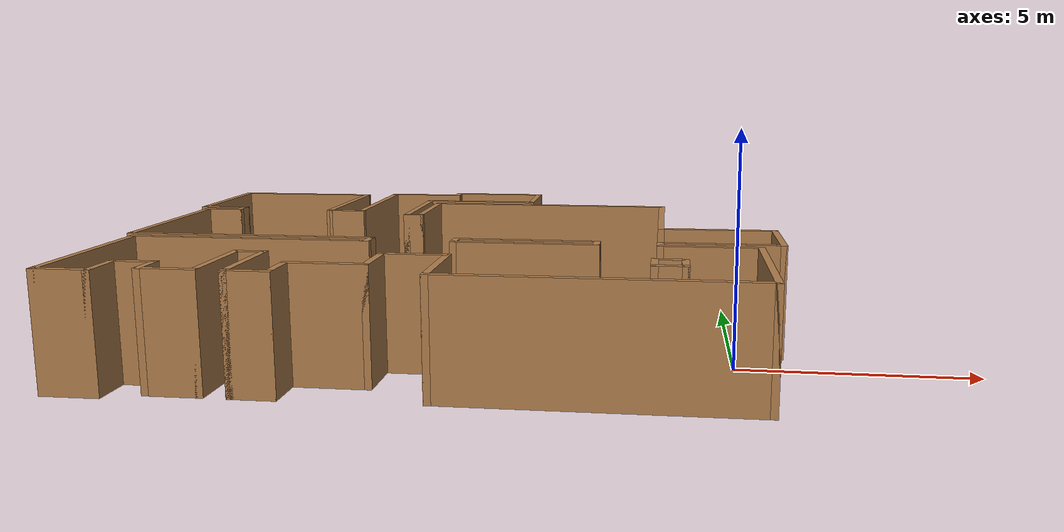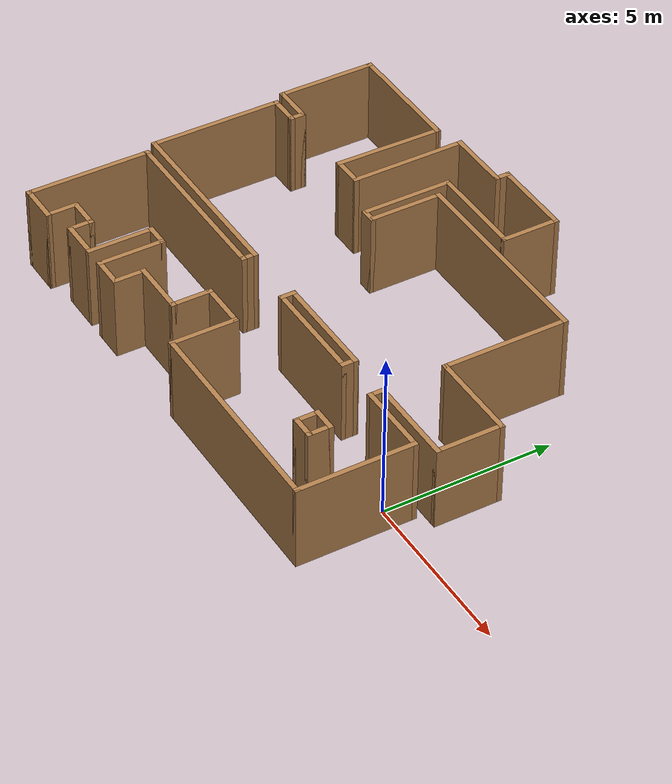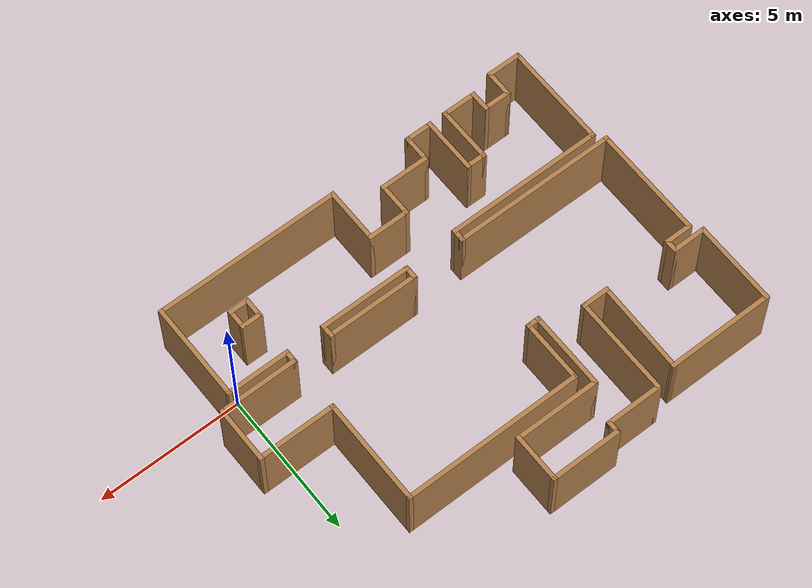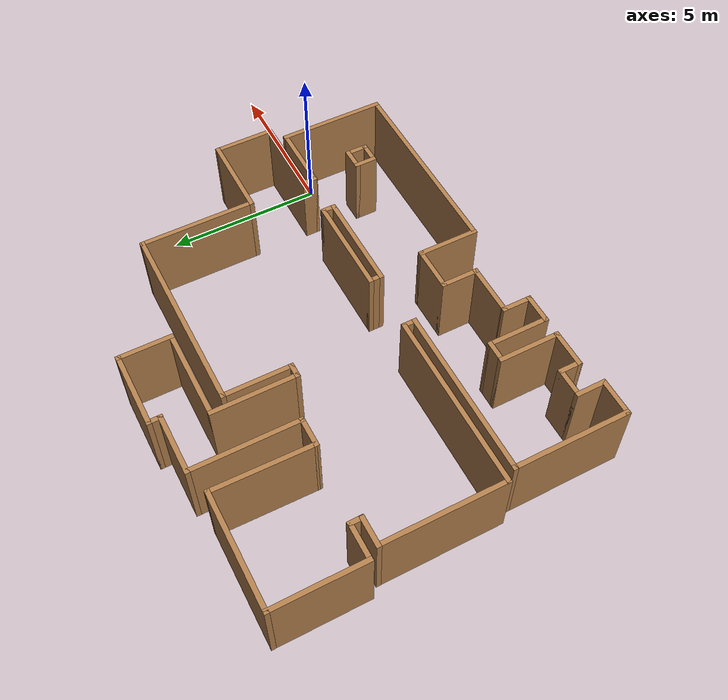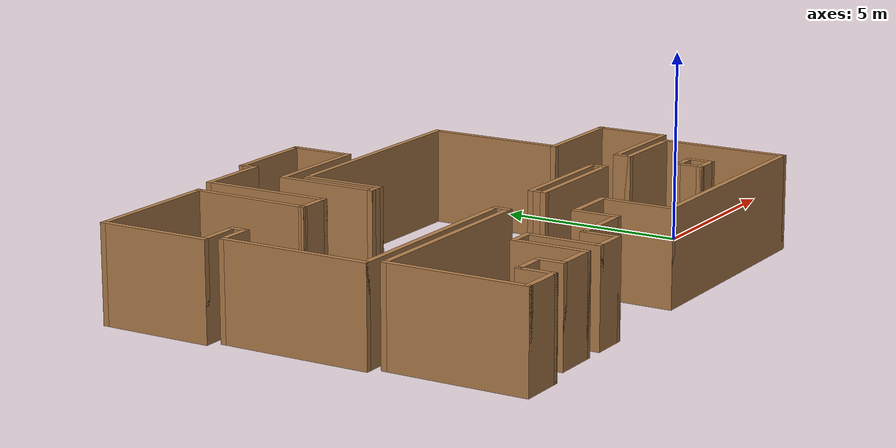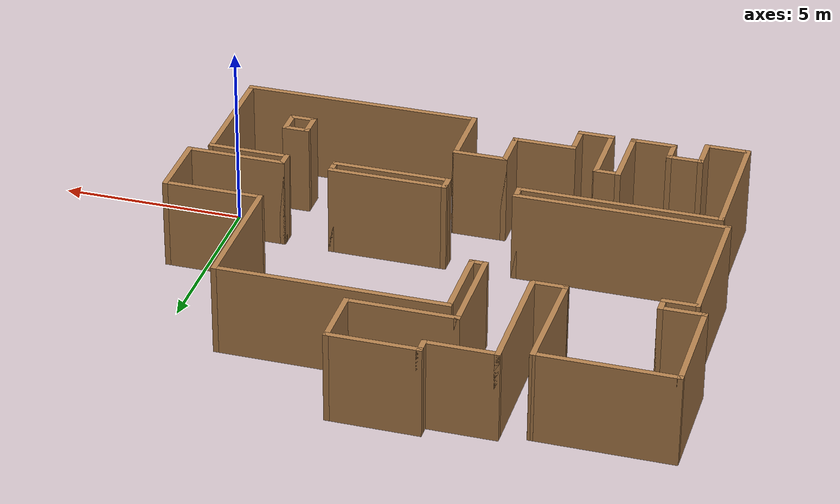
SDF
<?xml version='1.0'?>
<sdf version='1.6'>
  <model name='map_63'>
    <pose frame=''>-6.36659 2.64885 0 0 -0 0</pose>
    <link name='Wall_0'>
      <collision name='Wall_0_Collision'>
        <geometry>
          <box>
            <size>3.75 0.15 2.5</size>
          </box>
        </geometry>
        <pose frame=''>0 0 1.25 0 -0 0</pose>
      </collision>
      <visual name='Wall_0_Visual'>
        <pose frame=''>0 0 1.25 0 -0 0</pose>
        <geometry>
          <box>
            <size>3.75 0.15 2.5</size>
          </box>
        </geometry>
        <material>
          <script>
            <uri>file://media/materials/scripts/gazebo.material</uri>
            <name>Gazebo/Wood</name>
          </script>
          <ambient>1 1 1 1</ambient>
        </material>
        <meta>
          <layer>0</layer>
        </meta>
      </visual>
      <pose frame=''>-5.6 5.2 0 0 -0 3.14159</pose>
    </link>
    <link name='Wall_1'>
      <collision name='Wall_1_Collision'>
        <geometry>
          <box>
            <size>3 0.15 2.5</size>
          </box>
        </geometry>
        <pose frame=''>0 0 1.25 0 -0 0</pose>
      </collision>
      <visual name='Wall_1_Visual'>
        <pose frame=''>0 0 1.25 0 -0 0</pose>
        <geometry>
          <box>
            <size>3 0.15 2.5</size>
          </box>
        </geometry>
        <material>
          <script>
            <uri>file://media/materials/scripts/gazebo.material</uri>
            <name>Gazebo/Wood</name>
          </script>
          <ambient>1 1 1 1</ambient>
        </material>
        <meta>
          <layer>0</layer>
        </meta>
      </visual>
      <pose frame=''>-7.4 3.775 0 0 -0 -1.5708</pose>
    </link>
    <link name='Wall_10'>
      <collision name='Wall_10_Collision'>
        <geometry>
          <box>
            <size>1.25 0.15 2.5</size>
          </box>
        </geometry>
        <pose frame=''>0 0 1.25 0 -0 0</pose>
      </collision>
      <visual name='Wall_10_Visual'>
        <pose frame=''>0 0 1.25 0 -0 0</pose>
        <geometry>
          <box>
            <size>1.25 0.15 2.5</size>
          </box>
        </geometry>
        <material>
          <script>
            <uri>file://media/materials/scripts/gazebo.material</uri>
            <name>Gazebo/Wood</name>
          </script>
          <ambient>1 1 1 1</ambient>
        </material>
        <meta>
          <layer>0</layer>
        </meta>
      </visual>
      <pose frame=''>-6.35 -5.8 0 0 -0 0</pose>
    </link>
    <link name='Wall_11'>
      <collision name='Wall_11_Collision'>
        <geometry>
          <box>
            <size>1 0.15 2.5</size>
          </box>
        </geometry>
        <pose frame=''>0 0 1.25 0 -0 0</pose>
      </collision>
      <visual name='Wall_11_Visual'>
        <pose frame=''>0 0 1.25 0 -0 0</pose>
        <geometry>
          <box>
            <size>1 0.15 2.5</size>
          </box>
        </geometry>
        <material>
          <script>
            <uri>file://media/materials/scripts/gazebo.material</uri>
            <name>Gazebo/Wood</name>
          </script>
          <ambient>1 1 1 1</ambient>
        </material>
        <meta>
          <layer>0</layer>
        </meta>
      </visual>
      <pose frame=''>-5.8 -5.375 0 0 -0 1.5708</pose>
    </link>
    <link name='Wall_12'>
      <collision name='Wall_12_Collision'>
        <geometry>
          <box>
            <size>1 0.15 2.5</size>
          </box>
        </geometry>
        <pose frame=''>0 0 1.25 0 -0 0</pose>
      </collision>
      <visual name='Wall_12_Visual'>
        <pose frame=''>0 0 1.25 0 -0 0</pose>
        <geometry>
          <box>
            <size>1 0.15 2.5</size>
          </box>
        </geometry>
        <material>
          <script>
            <uri>file://media/materials/scripts/gazebo.material</uri>
            <name>Gazebo/Wood</name>
          </script>
          <ambient>1 1 1 1</ambient>
        </material>
        <meta>
          <layer>0</layer>
        </meta>
      </visual>
      <pose frame=''>-5.375 -4.95 0 0 -0 0</pose>
    </link>
    <link name='Wall_13'>
      <collision name='Wall_13_Collision'>
        <geometry>
          <box>
            <size>0.75 0.15 2.5</size>
          </box>
        </geometry>
        <pose frame=''>0 0 1.25 0 -0 0</pose>
      </collision>
      <visual name='Wall_13_Visual'>
        <pose frame=''>0 0 1.25 0 -0 0</pose>
        <geometry>
          <box>
            <size>0.75 0.15 2.5</size>
          </box>
        </geometry>
        <material>
          <script>
            <uri>file://media/materials/scripts/gazebo.material</uri>
            <name>Gazebo/Wood</name>
          </script>
          <ambient>1 1 1 1</ambient>
        </material>
        <meta>
          <layer>0</layer>
        </meta>
      </visual>
      <pose frame=''>-4.95 -5.25 0 0 -0 -1.5708</pose>
    </link>
    <link name='Wall_14'>
      <collision name='Wall_14_Collision'>
        <geometry>
          <box>
            <size>1.25 0.15 2.5</size>
          </box>
        </geometry>
        <pose frame=''>0 0 1.25 0 -0 0</pose>
      </collision>
      <visual name='Wall_14_Visual'>
        <pose frame=''>0 0 1.25 0 -0 0</pose>
        <geometry>
          <box>
            <size>1.25 0.15 2.5</size>
          </box>
        </geometry>
        <material>
          <script>
            <uri>file://media/materials/scripts/gazebo.material</uri>
            <name>Gazebo/Wood</name>
          </script>
          <ambient>1 1 1 1</ambient>
        </material>
        <meta>
          <layer>0</layer>
        </meta>
      </visual>
      <pose frame=''>-4.4 -5.55 0 0 -0 0</pose>
    </link>
    <link name='Wall_15'>
      <collision name='Wall_15_Collision'>
        <geometry>
          <box>
            <size>2 0.15 2.5</size>
          </box>
        </geometry>
        <pose frame=''>0 0 1.25 0 -0 0</pose>
      </collision>
      <visual name='Wall_15_Visual'>
        <pose frame=''>0 0 1.25 0 -0 0</pose>
        <geometry>
          <box>
            <size>2 0.15 2.5</size>
          </box>
        </geometry>
        <material>
          <script>
            <uri>file://media/materials/scripts/gazebo.material</uri>
            <name>Gazebo/Wood</name>
          </script>
          <ambient>1 1 1 1</ambient>
        </material>
        <meta>
          <layer>0</layer>
        </meta>
      </visual>
      <pose frame=''>-3.85 -4.625 0 0 -0 1.5708</pose>
    </link>
    <link name='Wall_16'>
      <collision name='Wall_16_Collision'>
        <geometry>
          <box>
            <size>0.75 0.15 2.5</size>
          </box>
        </geometry>
        <pose frame=''>0 0 1.25 0 -0 0</pose>
      </collision>
      <visual name='Wall_16_Visual'>
        <pose frame=''>0 0 1.25 0 -0 0</pose>
        <geometry>
          <box>
            <size>0.75 0.15 2.5</size>
          </box>
        </geometry>
        <material>
          <script>
            <uri>file://media/materials/scripts/gazebo.material</uri>
            <name>Gazebo/Wood</name>
          </script>
          <ambient>1 1 1 1</ambient>
        </material>
        <meta>
          <layer>0</layer>
        </meta>
      </visual>
      <pose frame=''>-3.55 -3.7 0 0 -0 0</pose>
    </link>
    <link name='Wall_17'>
      <collision name='Wall_17_Collision'>
        <geometry>
          <box>
            <size>2 0.15 2.5</size>
          </box>
        </geometry>
        <pose frame=''>0 0 1.25 0 -0 0</pose>
      </collision>
      <visual name='Wall_17_Visual'>
        <pose frame=''>0 0 1.25 0 -0 0</pose>
        <geometry>
          <box>
            <size>2 0.15 2.5</size>
          </box>
        </geometry>
        <material>
          <script>
            <uri>file://media/materials/scripts/gazebo.material</uri>
            <name>Gazebo/Wood</name>
          </script>
          <ambient>1 1 1 1</ambient>
        </material>
        <meta>
          <layer>0</layer>
        </meta>
      </visual>
      <pose frame=''>-3.25 -4.625 0 0 -0 -1.5708</pose>
    </link>
    <link name='Wall_18'>
      <collision name='Wall_18_Collision'>
        <geometry>
          <box>
            <size>1 0.15 2.5</size>
          </box>
        </geometry>
        <pose frame=''>0 0 1.25 0 -0 0</pose>
      </collision>
      <visual name='Wall_18_Visual'>
        <pose frame=''>0 0 1.25 0 -0 0</pose>
        <geometry>
          <box>
            <size>1 0.15 2.5</size>
          </box>
        </geometry>
        <material>
          <script>
            <uri>file://media/materials/scripts/gazebo.material</uri>
            <name>Gazebo/Wood</name>
          </script>
          <ambient>1 1 1 1</ambient>
        </material>
        <meta>
          <layer>0</layer>
        </meta>
      </visual>
      <pose frame=''>-2.825 -5.55 0 0 -0 0</pose>
    </link>
    <link name='Wall_19'>
      <collision name='Wall_19_Collision'>
        <geometry>
          <box>
            <size>1 0.15 2.5</size>
          </box>
        </geometry>
        <pose frame=''>0 0 1.25 0 -0 0</pose>
      </collision>
      <visual name='Wall_19_Visual'>
        <pose frame=''>0 0 1.25 0 -0 0</pose>
        <geometry>
          <box>
            <size>1 0.15 2.5</size>
          </box>
        </geometry>
        <material>
          <script>
            <uri>file://media/materials/scripts/gazebo.material</uri>
            <name>Gazebo/Wood</name>
          </script>
          <ambient>1 1 1 1</ambient>
        </material>
        <meta>
          <layer>0</layer>
        </meta>
      </visual>
      <pose frame=''>-2.4 -5.125 0 0 -0 1.5708</pose>
    </link>
    <link name='Wall_2'>
      <collision name='Wall_2_Collision'>
        <geometry>
          <box>
            <size>1.25 0.15 2.5</size>
          </box>
        </geometry>
        <pose frame=''>0 0 1.25 0 -0 0</pose>
      </collision>
      <visual name='Wall_2_Visual'>
        <pose frame=''>0 0 1.25 0 -0 0</pose>
        <geometry>
          <box>
            <size>1.25 0.15 2.5</size>
          </box>
        </geometry>
        <material>
          <script>
            <uri>file://media/materials/scripts/gazebo.material</uri>
            <name>Gazebo/Wood</name>
          </script>
          <ambient>1 1 1 1</ambient>
        </material>
        <meta>
          <layer>0</layer>
        </meta>
      </visual>
      <pose frame=''>-6.85 2.35 0 0 -0 0</pose>
    </link>
    <link name='Wall_20'>
      <collision name='Wall_20_Collision'>
        <geometry>
          <box>
            <size>1.75 0.15 2.5</size>
          </box>
        </geometry>
        <pose frame=''>0 0 1.25 0 -0 0</pose>
      </collision>
      <visual name='Wall_20_Visual'>
        <pose frame=''>0 0 1.25 0 -0 0</pose>
        <geometry>
          <box>
            <size>1.75 0.15 2.5</size>
          </box>
        </geometry>
        <material>
          <script>
            <uri>file://media/materials/scripts/gazebo.material</uri>
            <name>Gazebo/Wood</name>
          </script>
          <ambient>1 1 1 1</ambient>
        </material>
        <meta>
          <layer>0</layer>
        </meta>
      </visual>
      <pose frame=''>-1.6 -4.7 0 0 -0 0</pose>
    </link>
    <link name='Wall_21'>
      <collision name='Wall_21_Collision'>
        <geometry>
          <box>
            <size>1.25 0.15 2.5</size>
          </box>
        </geometry>
        <pose frame=''>0 0 1.25 0 -0 0</pose>
      </collision>
      <visual name='Wall_21_Visual'>
        <pose frame=''>0 0 1.25 0 -0 0</pose>
        <geometry>
          <box>
            <size>1.25 0.15 2.5</size>
          </box>
        </geometry>
        <material>
          <script>
            <uri>file://media/materials/scripts/gazebo.material</uri>
            <name>Gazebo/Wood</name>
          </script>
          <ambient>1 1 1 1</ambient>
        </material>
        <meta>
          <layer>0</layer>
        </meta>
      </visual>
      <pose frame=''>-0.8 -4.15 0 0 -0 1.5708</pose>
    </link>
    <link name='Wall_22'>
      <collision name='Wall_22_Collision'>
        <geometry>
          <box>
            <size>1.5 0.15 2.5</size>
          </box>
        </geometry>
        <pose frame=''>0 0 1.25 0 -0 0</pose>
      </collision>
      <visual name='Wall_22_Visual'>
        <pose frame=''>0 0 1.25 0 -0 0</pose>
        <geometry>
          <box>
            <size>1.5 0.15 2.5</size>
          </box>
        </geometry>
        <material>
          <script>
            <uri>file://media/materials/scripts/gazebo.material</uri>
            <name>Gazebo/Wood</name>
          </script>
          <ambient>1 1 1 1</ambient>
        </material>
        <meta>
          <layer>0</layer>
        </meta>
      </visual>
      <pose frame=''>-0.125 -3.6 0 0 -0 0</pose>
    </link>
    <link name='Wall_23'>
      <collision name='Wall_23_Collision'>
        <geometry>
          <box>
            <size>2 0.15 2.5</size>
          </box>
        </geometry>
        <pose frame=''>0 0 1.25 0 -0 0</pose>
      </collision>
      <visual name='Wall_23_Visual'>
        <pose frame=''>0 0 1.25 0 -0 0</pose>
        <geometry>
          <box>
            <size>2 0.15 2.5</size>
          </box>
        </geometry>
        <material>
          <script>
            <uri>file://media/materials/scripts/gazebo.material</uri>
            <name>Gazebo/Wood</name>
          </script>
          <ambient>1 1 1 1</ambient>
        </material>
        <meta>
          <layer>0</layer>
        </meta>
      </visual>
      <pose frame=''>0.55 -4.525 0 0 -0 -1.5708</pose>
    </link>
    <link name='Wall_24'>
      <collision name='Wall_24_Collision'>
        <geometry>
          <box>
            <size>6.5 0.15 2.5</size>
          </box>
        </geometry>
        <pose frame=''>0 0 1.25 0 -0 0</pose>
      </collision>
      <visual name='Wall_24_Visual'>
        <pose frame=''>0 0 1.25 0 -0 0</pose>
        <geometry>
          <box>
            <size>6.5 0.15 2.5</size>
          </box>
        </geometry>
        <material>
          <script>
            <uri>file://media/materials/scripts/gazebo.material</uri>
            <name>Gazebo/Wood</name>
          </script>
          <ambient>1 1 1 1</ambient>
        </material>
        <meta>
          <layer>0</layer>
        </meta>
      </visual>
      <pose frame=''>3.725 -5.45 0 0 -0 0</pose>
    </link>
    <link name='Wall_25'>
      <collision name='Wall_25_Collision'>
        <geometry>
          <box>
            <size>3.5 0.15 2.5</size>
          </box>
        </geometry>
        <pose frame=''>0 0 1.25 0 -0 0</pose>
      </collision>
      <visual name='Wall_25_Visual'>
        <pose frame=''>0 0 1.25 0 -0 0</pose>
        <geometry>
          <box>
            <size>3.5 0.15 2.5</size>
          </box>
        </geometry>
        <material>
          <script>
            <uri>file://media/materials/scripts/gazebo.material</uri>
            <name>Gazebo/Wood</name>
          </script>
          <ambient>1 1 1 1</ambient>
        </material>
        <meta>
          <layer>0</layer>
        </meta>
      </visual>
      <pose frame=''>6.9 -3.775 0 0 -0 1.5708</pose>
    </link>
    <link name='Wall_26'>
      <collision name='Wall_26_Collision'>
        <geometry>
          <box>
            <size>2.25 0.15 2.5</size>
          </box>
        </geometry>
        <pose frame=''>0 0 1.25 0 -0 0</pose>
      </collision>
      <visual name='Wall_26_Visual'>
        <pose frame=''>0 0 1.25 0 -0 0</pose>
        <geometry>
          <box>
            <size>2.25 0.15 2.5</size>
          </box>
        </geometry>
        <material>
          <script>
            <uri>file://media/materials/scripts/gazebo.material</uri>
            <name>Gazebo/Wood</name>
          </script>
          <ambient>1 1 1 1</ambient>
        </material>
        <meta>
          <layer>0</layer>
        </meta>
      </visual>
      <pose frame=''>5.85 -2.1 0 0 -0 3.14159</pose>
    </link>
    <link name='Wall_27'>
      <collision name='Wall_27_Collision'>
        <geometry>
          <box>
            <size>0.5 0.15 2.5</size>
          </box>
        </geometry>
        <pose frame=''>0 0 1.25 0 -0 0</pose>
      </collision>
      <visual name='Wall_27_Visual'>
        <pose frame=''>0 0 1.25 0 -0 0</pose>
        <geometry>
          <box>
            <size>0.5 0.15 2.5</size>
          </box>
        </geometry>
        <material>
          <script>
            <uri>file://media/materials/scripts/gazebo.material</uri>
            <name>Gazebo/Wood</name>
          </script>
          <ambient>1 1 1 1</ambient>
        </material>
        <meta>
          <layer>0</layer>
        </meta>
      </visual>
      <pose frame=''>4.8 -1.925 0 0 -0 1.5708</pose>
    </link>
    <link name='Wall_28'>
      <collision name='Wall_28_Collision'>
        <geometry>
          <box>
            <size>2.75 0.15 2.5</size>
          </box>
        </geometry>
        <pose frame=''>0 0 1.25 0 -0 0</pose>
      </collision>
      <visual name='Wall_28_Visual'>
        <pose frame=''>0 0 1.25 0 -0 0</pose>
        <geometry>
          <box>
            <size>2.75 0.15 2.5</size>
          </box>
        </geometry>
        <material>
          <script>
            <uri>file://media/materials/scripts/gazebo.material</uri>
            <name>Gazebo/Wood</name>
          </script>
          <ambient>1 1 1 1</ambient>
        </material>
        <meta>
          <layer>0</layer>
        </meta>
      </visual>
      <pose frame=''>6.1 -1.75 0 0 -0 0</pose>
    </link>
    <link name='Wall_29'>
      <collision name='Wall_29_Collision'>
        <geometry>
          <box>
            <size>2 0.15 2.5</size>
          </box>
        </geometry>
        <pose frame=''>0 0 1.25 0 -0 0</pose>
      </collision>
      <visual name='Wall_29_Visual'>
        <pose frame=''>0 0 1.25 0 -0 0</pose>
        <geometry>
          <box>
            <size>2 0.15 2.5</size>
          </box>
        </geometry>
        <material>
          <script>
            <uri>file://media/materials/scripts/gazebo.material</uri>
            <name>Gazebo/Wood</name>
          </script>
          <ambient>1 1 1 1</ambient>
        </material>
        <meta>
          <layer>0</layer>
        </meta>
      </visual>
      <pose frame=''>7.4 -0.825 0 0 -0 1.5708</pose>
    </link>
    <link name='Wall_3'>
      <collision name='Wall_3_Collision'>
        <geometry>
          <box>
            <size>0.5 0.15 2.5</size>
          </box>
        </geometry>
        <pose frame=''>0 0 1.25 0 -0 0</pose>
      </collision>
      <visual name='Wall_3_Visual'>
        <pose frame=''>0 0 1.25 0 -0 0</pose>
        <geometry>
          <box>
            <size>0.5 0.15 2.5</size>
          </box>
        </geometry>
        <material>
          <script>
            <uri>file://media/materials/scripts/gazebo.material</uri>
            <name>Gazebo/Wood</name>
          </script>
          <ambient>1 1 1 1</ambient>
        </material>
        <meta>
          <layer>0</layer>
        </meta>
      </visual>
      <pose frame=''>-6.3 2.175 0 0 -0 -1.5708</pose>
    </link>
    <link name='Wall_30'>
      <collision name='Wall_30_Collision'>
        <geometry>
          <box>
            <size>2.75 0.15 2.5</size>
          </box>
        </geometry>
        <pose frame=''>0 0 1.25 0 -0 0</pose>
      </collision>
      <visual name='Wall_30_Visual'>
        <pose frame=''>0 0 1.25 0 -0 0</pose>
        <geometry>
          <box>
            <size>2.75 0.15 2.5</size>
          </box>
        </geometry>
        <material>
          <script>
            <uri>file://media/materials/scripts/gazebo.material</uri>
            <name>Gazebo/Wood</name>
          </script>
          <ambient>1 1 1 1</ambient>
        </material>
        <meta>
          <layer>0</layer>
        </meta>
      </visual>
      <pose frame=''>6.1 0.1 0 0 -0 3.14159</pose>
    </link>
    <link name='Wall_31'>
      <collision name='Wall_31_Collision'>
        <geometry>
          <box>
            <size>3.75 0.15 2.5</size>
          </box>
        </geometry>
        <pose frame=''>0 0 1.25 0 -0 0</pose>
      </collision>
      <visual name='Wall_31_Visual'>
        <pose frame=''>0 0 1.25 0 -0 0</pose>
        <geometry>
          <box>
            <size>3.75 0.15 2.5</size>
          </box>
        </geometry>
        <material>
          <script>
            <uri>file://media/materials/scripts/gazebo.material</uri>
            <name>Gazebo/Wood</name>
          </script>
          <ambient>1 1 1 1</ambient>
        </material>
        <meta>
          <layer>0</layer>
        </meta>
      </visual>
      <pose frame=''>4.8 1.9 0 0 -0 1.5708</pose>
    </link>
    <link name='Wall_32'>
      <collision name='Wall_32_Collision'>
        <geometry>
          <box>
            <size>6.25 0.15 2.5</size>
          </box>
        </geometry>
        <pose frame=''>0 0 1.25 0 -0 0</pose>
      </collision>
      <visual name='Wall_32_Visual'>
        <pose frame=''>0 0 1.25 0 -0 0</pose>
        <geometry>
          <box>
            <size>6.25 0.15 2.5</size>
          </box>
        </geometry>
        <material>
          <script>
            <uri>file://media/materials/scripts/gazebo.material</uri>
            <name>Gazebo/Wood</name>
          </script>
          <ambient>1 1 1 1</ambient>
        </material>
        <meta>
          <layer>0</layer>
        </meta>
      </visual>
      <pose frame=''>1.75 3.7 0 0 -0 3.14159</pose>
    </link>
    <link name='Wall_33'>
      <collision name='Wall_33_Collision'>
        <geometry>
          <box>
            <size>2.25 0.15 2.5</size>
          </box>
        </geometry>
        <pose frame=''>0 0 1.25 0 -0 0</pose>
      </collision>
      <visual name='Wall_33_Visual'>
        <pose frame=''>0 0 1.25 0 -0 0</pose>
        <geometry>
          <box>
            <size>2.25 0.15 2.5</size>
          </box>
        </geometry>
        <material>
          <script>
            <uri>file://media/materials/scripts/gazebo.material</uri>
            <name>Gazebo/Wood</name>
          </script>
          <ambient>1 1 1 1</ambient>
        </material>
        <meta>
          <layer>0</layer>
        </meta>
      </visual>
      <pose frame=''>-1.3 2.65 0 0 -0 -1.5708</pose>
    </link>
    <link name='Wall_34'>
      <collision name='Wall_34_Collision'>
        <geometry>
          <box>
            <size>0.5 0.15 2.5</size>
          </box>
        </geometry>
        <pose frame=''>0 0 1.25 0 -0 0</pose>
      </collision>
      <visual name='Wall_34_Visual'>
        <pose frame=''>0 0 1.25 0 -0 0</pose>
        <geometry>
          <box>
            <size>0.5 0.15 2.5</size>
          </box>
        </geometry>
        <material>
          <script>
            <uri>file://media/materials/scripts/gazebo.material</uri>
            <name>Gazebo/Wood</name>
          </script>
          <ambient>1 1 1 1</ambient>
        </material>
        <meta>
          <layer>0</layer>
        </meta>
      </visual>
      <pose frame=''>-1.475 1.6 0 0 -0 3.14159</pose>
    </link>
    <link name='Wall_35'>
      <collision name='Wall_35_Collision'>
        <geometry>
          <box>
            <size>2.75 0.15 2.5</size>
          </box>
        </geometry>
        <pose frame=''>0 0 1.25 0 -0 0</pose>
      </collision>
      <visual name='Wall_35_Visual'>
        <pose frame=''>0 0 1.25 0 -0 0</pose>
        <geometry>
          <box>
            <size>2.75 0.15 2.5</size>
          </box>
        </geometry>
        <material>
          <script>
            <uri>file://media/materials/scripts/gazebo.material</uri>
            <name>Gazebo/Wood</name>
          </script>
          <ambient>1 1 1 1</ambient>
        </material>
        <meta>
          <layer>0</layer>
        </meta>
      </visual>
      <pose frame=''>-1.65 2.9 0 0 -0 1.5708</pose>
    </link>
    <link name='Wall_36'>
      <collision name='Wall_36_Collision'>
        <geometry>
          <box>
            <size>3 0.15 2.5</size>
          </box>
        </geometry>
        <pose frame=''>0 0 1.25 0 -0 0</pose>
      </collision>
      <visual name='Wall_36_Visual'>
        <pose frame=''>0 0 1.25 0 -0 0</pose>
        <geometry>
          <box>
            <size>3 0.15 2.5</size>
          </box>
        </geometry>
        <material>
          <script>
            <uri>file://media/materials/scripts/gazebo.material</uri>
            <name>Gazebo/Wood</name>
          </script>
          <ambient>1 1 1 1</ambient>
        </material>
        <meta>
          <layer>0</layer>
        </meta>
      </visual>
      <pose frame=''>-0.225 4.2 0 0 -0 0</pose>
    </link>
    <link name='Wall_37'>
      <collision name='Wall_37_Collision'>
        <geometry>
          <box>
            <size>1.75 0.15 2.5</size>
          </box>
        </geometry>
        <pose frame=''>0 0 1.25 0 -0 0</pose>
      </collision>
      <visual name='Wall_37_Visual'>
        <pose frame=''>0 0 1.25 0 -0 0</pose>
        <geometry>
          <box>
            <size>1.75 0.15 2.5</size>
          </box>
        </geometry>
        <material>
          <script>
            <uri>file://media/materials/scripts/gazebo.material</uri>
            <name>Gazebo/Wood</name>
          </script>
          <ambient>1 1 1 1</ambient>
        </material>
        <meta>
          <layer>0</layer>
        </meta>
      </visual>
      <pose frame=''>1.2 5 0 0 -0 1.5708</pose>
    </link>
    <link name='Wall_38'>
      <collision name='Wall_38_Collision'>
        <geometry>
          <box>
            <size>2.5 0.15 2.5</size>
          </box>
        </geometry>
        <pose frame=''>0 0 1.25 0 -0 0</pose>
      </collision>
      <visual name='Wall_38_Visual'>
        <pose frame=''>0 0 1.25 0 -0 0</pose>
        <geometry>
          <box>
            <size>2.5 0.15 2.5</size>
          </box>
        </geometry>
        <material>
          <script>
            <uri>file://media/materials/scripts/gazebo.material</uri>
            <name>Gazebo/Wood</name>
          </script>
          <ambient>1 1 1 1</ambient>
        </material>
        <meta>
          <layer>0</layer>
        </meta>
      </visual>
      <pose frame=''>0.025 5.8 0 0 -0 3.14159</pose>
    </link>
    <link name='Wall_39'>
      <collision name='Wall_39_Collision'>
        <geometry>
          <box>
            <size>0.5 0.15 2.5</size>
          </box>
        </geometry>
        <pose frame=''>0 0 1.25 0 -0 0</pose>
      </collision>
      <visual name='Wall_39_Visual'>
        <pose frame=''>0 0 1.25 0 -0 0</pose>
        <geometry>
          <box>
            <size>0.5 0.15 2.5</size>
          </box>
        </geometry>
        <material>
          <script>
            <uri>file://media/materials/scripts/gazebo.material</uri>
            <name>Gazebo/Wood</name>
          </script>
          <ambient>1 1 1 1</ambient>
        </material>
        <meta>
          <layer>0</layer>
        </meta>
      </visual>
      <pose frame=''>-1.15 5.625 0 0 -0 -1.5708</pose>
    </link>
    <link name='Wall_4'>
      <collision name='Wall_4_Collision'>
        <geometry>
          <box>
            <size>1 0.15 2.5</size>
          </box>
        </geometry>
        <pose frame=''>0 0 1.25 0 -0 0</pose>
      </collision>
      <visual name='Wall_4_Visual'>
        <pose frame=''>0 0 1.25 0 -0 0</pose>
        <geometry>
          <box>
            <size>1 0.15 2.5</size>
          </box>
        </geometry>
        <material>
          <script>
            <uri>file://media/materials/scripts/gazebo.material</uri>
            <name>Gazebo/Wood</name>
          </script>
          <ambient>1 1 1 1</ambient>
        </material>
        <meta>
          <layer>0</layer>
        </meta>
      </visual>
      <pose frame=''>-6.725 2 0 0 -0 3.14159</pose>
    </link>
    <link name='Wall_40'>
      <collision name='Wall_40_Collision'>
        <geometry>
          <box>
            <size>2 0.15 2.5</size>
          </box>
        </geometry>
        <pose frame=''>0 0 1.25 0 -0 0</pose>
      </collision>
      <visual name='Wall_40_Visual'>
        <pose frame=''>0 0 1.25 0 -0 0</pose>
        <geometry>
          <box>
            <size>2 0.15 2.5</size>
          </box>
        </geometry>
        <material>
          <script>
            <uri>file://media/materials/scripts/gazebo.material</uri>
            <name>Gazebo/Wood</name>
          </script>
          <ambient>1 1 1 1</ambient>
        </material>
        <meta>
          <layer>0</layer>
        </meta>
      </visual>
      <pose frame=''>-2.075 5.45 0 0 -0 3.14159</pose>
    </link>
    <link name='Wall_41'>
      <collision name='Wall_41_Collision'>
        <geometry>
          <box>
            <size>3.5 0.15 2.5</size>
          </box>
        </geometry>
        <pose frame=''>0 0 1.25 0 -0 0</pose>
      </collision>
      <visual name='Wall_41_Visual'>
        <pose frame=''>0 0 1.25 0 -0 0</pose>
        <geometry>
          <box>
            <size>3.5 0.15 2.5</size>
          </box>
        </geometry>
        <material>
          <script>
            <uri>file://media/materials/scripts/gazebo.material</uri>
            <name>Gazebo/Wood</name>
          </script>
          <ambient>1 1 1 1</ambient>
        </material>
        <meta>
          <layer>0</layer>
        </meta>
      </visual>
      <pose frame=''>-3 3.775 0 0 -0 -1.5708</pose>
    </link>
    <link name='Wall_42'>
      <collision name='Wall_42_Collision'>
        <geometry>
          <box>
            <size>1 0.15 2.5</size>
          </box>
        </geometry>
        <pose frame=''>0 0 1.25 0 -0 0</pose>
      </collision>
      <visual name='Wall_42_Visual'>
        <pose frame=''>0 0 1.25 0 -0 0</pose>
        <geometry>
          <box>
            <size>1 0.15 2.5</size>
          </box>
        </geometry>
        <material>
          <script>
            <uri>file://media/materials/scripts/gazebo.material</uri>
            <name>Gazebo/Wood</name>
          </script>
          <ambient>1 1 1 1</ambient>
        </material>
        <meta>
          <layer>0</layer>
        </meta>
      </visual>
      <pose frame=''>-3.425 2.1 0 0 -0 3.14159</pose>
    </link>
    <link name='Wall_43'>
      <collision name='Wall_43_Collision'>
        <geometry>
          <box>
            <size>3.2504 0.15 2.5</size>
          </box>
        </geometry>
        <pose frame=''>0 0 1.25 0 -0 0</pose>
      </collision>
      <visual name='Wall_43_Visual'>
        <pose frame=''>0 0 1.25 0 -0 0</pose>
        <geometry>
          <box>
            <size>3.2504 0.15 2.5</size>
          </box>
        </geometry>
        <material>
          <script>
            <uri>file://media/materials/scripts/gazebo.material</uri>
            <name>Gazebo/Wood</name>
          </script>
          <ambient>1 1 1 1</ambient>
        </material>
        <meta>
          <layer>0</layer>
        </meta>
      </visual>
      <pose frame=''>-3.825 3.65 0 0 -0 1.55467</pose>
    </link>
    <link name='Wall_46'>
      <collision name='Wall_46_Collision'>
        <geometry>
          <box>
            <size>3.25 0.15 2.5</size>
          </box>
        </geometry>
        <pose frame=''>0 0 1.25 0 -0 0</pose>
      </collision>
      <visual name='Wall_46_Visual'>
        <pose frame=''>0 0 1.25 0 -0 0</pose>
        <geometry>
          <box>
            <size>3.25 0.15 2.5</size>
          </box>
        </geometry>
        <material>
          <script>
            <uri>file://media/materials/scripts/gazebo.material</uri>
            <name>Gazebo/Wood</name>
          </script>
          <ambient>1 1 1 1</ambient>
        </material>
        <meta>
          <layer>0</layer>
        </meta>
      </visual>
      <pose frame=''>1.89939 -2.10794 0 0 -0 3.14159</pose>
    </link>
    <link name='Wall_47'>
      <collision name='Wall_47_Collision'>
        <geometry>
          <box>
            <size>0.5 0.15 2.5</size>
          </box>
        </geometry>
        <pose frame=''>0 0 1.25 0 -0 0</pose>
      </collision>
      <visual name='Wall_47_Visual'>
        <pose frame=''>0 0 1.25 0 -0 0</pose>
        <geometry>
          <box>
            <size>0.5 0.15 2.5</size>
          </box>
        </geometry>
        <material>
          <script>
            <uri>file://media/materials/scripts/gazebo.material</uri>
            <name>Gazebo/Wood</name>
          </script>
          <ambient>1 1 1 1</ambient>
        </material>
        <meta>
          <layer>0</layer>
        </meta>
      </visual>
      <pose frame=''>0.349392 -1.93294 0 0 -0 1.5708</pose>
    </link>
    <link name='Wall_48'>
      <collision name='Wall_48_Collision'>
        <geometry>
          <box>
            <size>3.25 0.15 2.5</size>
          </box>
        </geometry>
        <pose frame=''>0 0 1.25 0 -0 0</pose>
      </collision>
      <visual name='Wall_48_Visual'>
        <pose frame=''>0 0 1.25 0 -0 0</pose>
        <geometry>
          <box>
            <size>3.25 0.15 2.5</size>
          </box>
        </geometry>
        <material>
          <script>
            <uri>file://media/materials/scripts/gazebo.material</uri>
            <name>Gazebo/Wood</name>
          </script>
          <ambient>1 1 1 1</ambient>
        </material>
        <meta>
          <layer>0</layer>
        </meta>
      </visual>
      <pose frame=''>1.89939 -1.75794 0 0 -0 0</pose>
    </link>
    <link name='Wall_49'>
      <collision name='Wall_49_Collision'>
        <geometry>
          <box>
            <size>0.5 0.15 2.5</size>
          </box>
        </geometry>
        <pose frame=''>0 0 1.25 0 -0 0</pose>
      </collision>
      <visual name='Wall_49_Visual'>
        <pose frame=''>0 0 1.25 0 -0 0</pose>
        <geometry>
          <box>
            <size>0.5 0.15 2.5</size>
          </box>
        </geometry>
        <material>
          <script>
            <uri>file://media/materials/scripts/gazebo.material</uri>
            <name>Gazebo/Wood</name>
          </script>
          <ambient>1 1 1 1</ambient>
        </material>
        <meta>
          <layer>0</layer>
        </meta>
      </visual>
      <pose frame=''>3.44939 -1.93294 0 0 -0 -1.5708</pose>
    </link>
    <link name='Wall_5'>
      <collision name='Wall_5_Collision'>
        <geometry>
          <box>
            <size>4 0.15 2.5</size>
          </box>
        </geometry>
        <pose frame=''>0 0 1.25 0 -0 0</pose>
      </collision>
      <visual name='Wall_5_Visual'>
        <pose frame=''>0 0 1.25 0 -0 0</pose>
        <geometry>
          <box>
            <size>4 0.15 2.5</size>
          </box>
        </geometry>
        <material>
          <script>
            <uri>file://media/materials/scripts/gazebo.material</uri>
            <name>Gazebo/Wood</name>
          </script>
          <ambient>1 1 1 1</ambient>
        </material>
        <meta>
          <layer>0</layer>
        </meta>
      </visual>
      <pose frame=''>-7.15 0.075 0 0 -0 -1.5708</pose>
    </link>
    <link name='Wall_51'>
      <collision name='Wall_51_Collision'>
        <geometry>
          <box>
            <size>0.75 0.15 2.5</size>
          </box>
        </geometry>
        <pose frame=''>0 0 1.25 0 -0 0</pose>
      </collision>
      <visual name='Wall_51_Visual'>
        <pose frame=''>0 0 1.25 0 -0 0</pose>
        <geometry>
          <box>
            <size>0.75 0.15 2.5</size>
          </box>
        </geometry>
        <material>
          <script>
            <uri>file://media/materials/scripts/gazebo.material</uri>
            <name>Gazebo/Wood</name>
          </script>
          <ambient>1 1 1 1</ambient>
        </material>
        <meta>
          <layer>0</layer>
        </meta>
      </visual>
      <pose frame=''>4.70359 -3.87628 0 0 -0 -1.5708</pose>
    </link>
    <link name='Wall_52'>
      <collision name='Wall_52_Collision'>
        <geometry>
          <box>
            <size>0.75 0.15 2.5</size>
          </box>
        </geometry>
        <pose frame=''>0 0 1.25 0 -0 0</pose>
      </collision>
      <visual name='Wall_52_Visual'>
        <pose frame=''>0 0 1.25 0 -0 0</pose>
        <geometry>
          <box>
            <size>0.75 0.15 2.5</size>
          </box>
        </geometry>
        <material>
          <script>
            <uri>file://media/materials/scripts/gazebo.material</uri>
            <name>Gazebo/Wood</name>
          </script>
          <ambient>1 1 1 1</ambient>
        </material>
        <meta>
          <layer>0</layer>
        </meta>
      </visual>
      <pose frame=''>5.00359 -4.17628 0 0 -0 0</pose>
    </link>
    <link name='Wall_53'>
      <collision name='Wall_53_Collision'>
        <geometry>
          <box>
            <size>0.75 0.15 2.5</size>
          </box>
        </geometry>
        <pose frame=''>0 0 1.25 0 -0 0</pose>
      </collision>
      <visual name='Wall_53_Visual'>
        <pose frame=''>0 0 1.25 0 -0 0</pose>
        <geometry>
          <box>
            <size>0.75 0.15 2.5</size>
          </box>
        </geometry>
        <material>
          <script>
            <uri>file://media/materials/scripts/gazebo.material</uri>
            <name>Gazebo/Wood</name>
          </script>
          <ambient>1 1 1 1</ambient>
        </material>
        <meta>
          <layer>0</layer>
        </meta>
      </visual>
      <pose frame=''>5.30359 -3.87628 0 0 -0 1.5708</pose>
    </link>
    <link name='Wall_54'>
      <collision name='Wall_54_Collision'>
        <geometry>
          <box>
            <size>0.75 0.15 2.5</size>
          </box>
        </geometry>
        <pose frame=''>0 0 1.25 0 -0 0</pose>
      </collision>
      <visual name='Wall_54_Visual'>
        <pose frame=''>0 0 1.25 0 -0 0</pose>
        <geometry>
          <box>
            <size>0.75 0.15 2.5</size>
          </box>
        </geometry>
        <material>
          <script>
            <uri>file://media/materials/scripts/gazebo.material</uri>
            <name>Gazebo/Wood</name>
          </script>
          <ambient>1 1 1 1</ambient>
        </material>
        <meta>
          <layer>0</layer>
        </meta>
      </visual>
      <pose frame=''>5.00359 -3.57627 0 0 -0 3.14159</pose>
    </link>
    <link name='Wall_6'>
      <collision name='Wall_6_Collision'>
        <geometry>
          <box>
            <size>5.75 0.15 2.5</size>
          </box>
        </geometry>
        <pose frame=''>0 0 1.25 0 -0 0</pose>
      </collision>
      <visual name='Wall_6_Visual'>
        <pose frame=''>0 0 1.25 0 -0 0</pose>
        <geometry>
          <box>
            <size>5.75 0.15 2.5</size>
          </box>
        </geometry>
        <material>
          <script>
            <uri>file://media/materials/scripts/gazebo.material</uri>
            <name>Gazebo/Wood</name>
          </script>
          <ambient>1 1 1 1</ambient>
        </material>
        <meta>
          <layer>0</layer>
        </meta>
      </visual>
      <pose frame=''>-4.35 -1.85 0 0 -0 0</pose>
    </link>
    <link name='Wall_7'>
      <collision name='Wall_7_Collision'>
        <geometry>
          <box>
            <size>0.5 0.15 2.5</size>
          </box>
        </geometry>
        <pose frame=''>0 0 1.25 0 -0 0</pose>
      </collision>
      <visual name='Wall_7_Visual'>
        <pose frame=''>0 0 1.25 0 -0 0</pose>
        <geometry>
          <box>
            <size>0.5 0.15 2.5</size>
          </box>
        </geometry>
        <material>
          <script>
            <uri>file://media/materials/scripts/gazebo.material</uri>
            <name>Gazebo/Wood</name>
          </script>
          <ambient>1 1 1 1</ambient>
        </material>
        <meta>
          <layer>0</layer>
        </meta>
      </visual>
      <pose frame=''>-1.55 -2.025 0 0 -0 -1.5708</pose>
    </link>
    <link name='Wall_8'>
      <collision name='Wall_8_Collision'>
        <geometry>
          <box>
            <size>5.5 0.15 2.5</size>
          </box>
        </geometry>
        <pose frame=''>0 0 1.25 0 -0 0</pose>
      </collision>
      <visual name='Wall_8_Visual'>
        <pose frame=''>0 0 1.25 0 -0 0</pose>
        <geometry>
          <box>
            <size>5.5 0.15 2.5</size>
          </box>
        </geometry>
        <material>
          <script>
            <uri>file://media/materials/scripts/gazebo.material</uri>
            <name>Gazebo/Wood</name>
          </script>
          <ambient>1 1 1 1</ambient>
        </material>
        <meta>
          <layer>0</layer>
        </meta>
      </visual>
      <pose frame=''>-4.225 -2.2 0 0 -0 3.14159</pose>
    </link>
    <link name='Wall_9'>
      <collision name='Wall_9_Collision'>
        <geometry>
          <box>
            <size>3.75 0.15 2.5</size>
          </box>
        </geometry>
        <pose frame=''>0 0 1.25 0 -0 0</pose>
      </collision>
      <visual name='Wall_9_Visual'>
        <pose frame=''>0 0 1.25 0 -0 0</pose>
        <geometry>
          <box>
            <size>3.75 0.15 2.5</size>
          </box>
        </geometry>
        <material>
          <script>
            <uri>file://media/materials/scripts/gazebo.material</uri>
            <name>Gazebo/Wood</name>
          </script>
          <ambient>1 1 1 1</ambient>
        </material>
        <meta>
          <layer>0</layer>
        </meta>
      </visual>
      <pose frame=''>-6.9 -4 0 0 -0 -1.5708</pose>
    </link>
    <static>1</static>
  </model>
</sdf>
